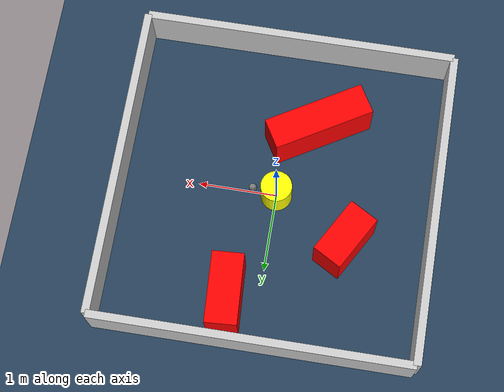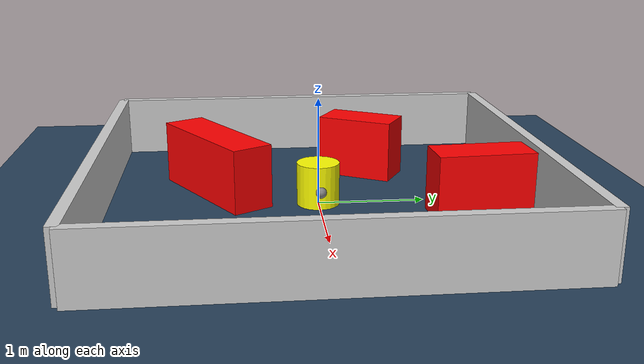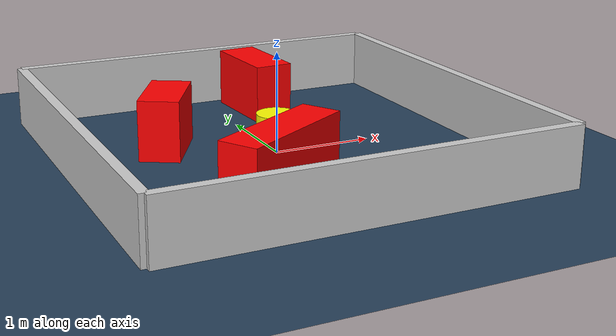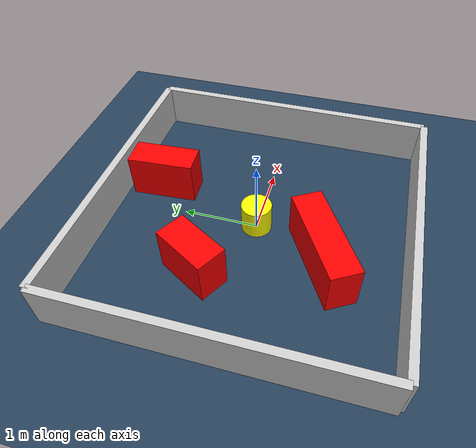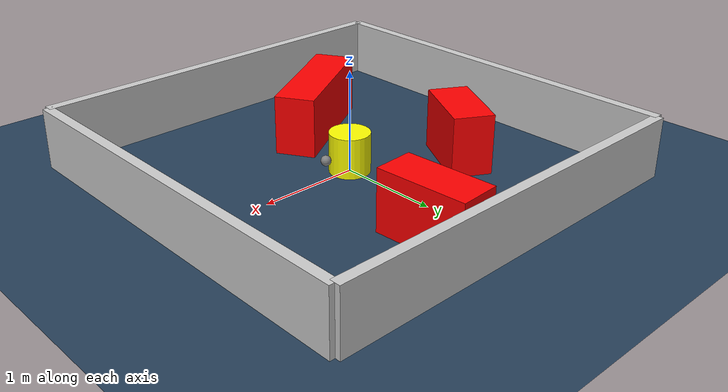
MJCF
<?xml version="1.0" ?>
<mujoco model="generated_environment">
  <option timestep="0.01" integrator="RK4" cone="elliptic"/>
  <default>
    <geom density="1"/>
  </default>
  <asset>
    <texture builtin="gradient" height="3072" rgb1="0.3 0.5 0.7" rgb2="0 0 0" type="skybox" width="512"/>
    <texture builtin="checker" height="300" mark="edge" markrgb="0.8 0.8 0.8" name="groundplane" rgb1="0.2 0.3 0.4" rgb2="0.1 0.2 0.3" type="2d" width="300"/>
    <material name="groundplane" reflectance="0.2" texrepeat="5 5" texture="groundplane" texuniform="true"/>
    <material name="robot" rgba="0.0 1.0 0.0 1"/>
  </asset>
  <worldbody>
    <light dir="0 0 -1" directional="true" pos="0 0 1.5"/>
    <geom condim="4" friction="1.0 0.005 0.001" material="groundplane" name="floor" size="0 0 0.05" type="plane"/>
    <body name="walls">
      <geom name="wall_1" condim="4" pos="-2.0 0.0 0.3" rgba="0.800000011920929 0.800000011920929 0.800000011920929 1.0" size="0.05 2.0 0.3" type="box"/>
      <geom name="wall_2" condim="4" pos="2.0 0.0 0.3" rgba="0.800000011920929 0.800000011920929 0.800000011920929 1.0" size="0.05 2.0 0.3" type="box"/>
      <geom name="wall_3" condim="4" pos="0.0 -2.0 0.3" rgba="0.800000011920929 0.800000011920929 0.800000011920929 1.0" size="2.0 0.05 0.3" type="box"/>
      <geom name="wall_4" condim="4" pos="0.0 2.0 0.3" rgba="0.800000011920929 0.800000011920929 0.800000011920929 1.0" size="2.0 0.05 0.3" type="box"/>
    </body>
    <body name="robot">
      <joint name="joint_x" type="slide" pos="0 0 0" axis="1 0 0"/>
      <joint name="joint_y" type="slide" pos="0 0 0" axis="0 1 0"/>
      <geom name="robot" type="sphere" pos="0.3 0.0 0.2" size="0.05" mass="5." friction="1.0 0.005 0.0001" condim="4" rgba="0.5 0.5 0.5 1.0"/>
      <site name="sensor_ball"/>
    </body>
    <body name="obstacle_movable_1">
      <geom name="obstacle_movable_1" condim="4" pos="0.0 0.0 0.2" euler="0 0 0.0" friction="1.0 0.005 0.001" rgba="1.0 1.0 0.0 1.0" size="0.2 0.2 0.0" type="cylinder" mass="0.1"/>
      <joint type="free"/>
    </body>
    <body name="obstacle_2_static">
      <geom name="obstacle_2_static" condim="4" pos="0.40699261487377547 1.429057538514081 0.3" euler="0 0 273.4110102568379" friction="1.0 0.005 0.001" rgba="1 0 0 1" size="0.4445337611074377 0.2 0.3" type="box"/>
    </body>
    <body name="obstacle_3_static">
      <geom name="obstacle_3_static" condim="4" pos="-0.9428077967446932 0.5363970478768227 0.3" euler="0 0 240.37858578555634" friction="1.0 0.005 0.001" rgba="1 0 0 1" size="0.3794672611644509 0.2 0.3" type="box"/>
    </body>
    <body name="obstacle_4_static">
      <geom name="obstacle_4_static" condim="4" pos="-0.39736879538514525 -0.9411305841610956 0.3" euler="0 0 30.727634503921305" friction="1.0 0.005 0.001" rgba="1 0 0 1" size="0.6560397689622753 0.2 0.3" type="box"/>
    </body>
  </worldbody>
  <actuator>
    <motor name="actuator_x" joint="joint_x" gear="1" ctrlrange="-1 1"/>
    <motor name="actuator_y" joint="joint_y" gear="1" ctrlrange="-1 1"/>
  </actuator>
</mujoco>
